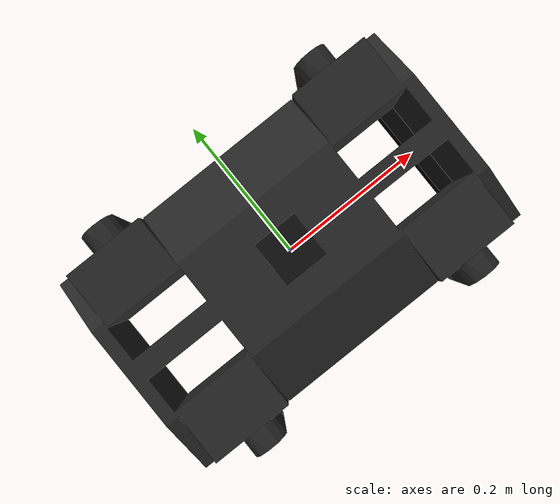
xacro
<?xml version="1.0"?>
<robot name="champ" xmlns:xacro="http://ros.org/wiki/xacro">
    <xacro:include filename="$(find champ_description)/urdf/properties.urdf.xacro" />

    <material name="black"><color rgba="0.15 0.15 0.15 1.0" /></material>

    <link name="base_link">

        <collision>
            <origin xyz="0 0 0" rpy="0 0 0" />
            <geometry>
                <mesh filename="${base_mesh_path}" scale="0.001 0.001 0.001" />
            </geometry>
        </collision>
        <visual>
            <origin xyz="0 0 0" rpy="0 0 0" />
            <geometry>
                <mesh filename="file://$(find champ_description)/meshes/base_simple.stl" scale="0.001 0.001 0.001" />
            </geometry>
            <material name="black" />
        </visual>
    </link>
    <link name="base_inertia">
        <inertial>
            <origin xyz="0 0 0" />
            <mass value="${base_mass}" />
            <inertia ixx="${(1/12) * base_mass * (base_y_length * base_y_length + base_z_length * base_z_length)}" ixy="0.0" ixz="0.0"
                     iyy="${(1/12) * base_mass * (base_x_length * base_x_length + base_z_length * base_z_length)}" iyz="0.0"
                     izz="${(1/12) * base_mass * (base_x_length * base_x_length + base_y_length * base_y_length)}" />
        </inertial>
    </link>
    <joint name="base_link_to_base_inertia" type="fixed">
        <parent link="base_link"/>
        <child link="base_inertia"/>
        <origin rpy="0 0 0" xyz="0 0 0"/>
    </joint>

    <gazebo reference="base_link">
        <material>Gazebo/FlatBlack</material>
    </gazebo>

    <xacro:include filename="$(find champ_description)/urdf/leg.urdf.xacro" />

    <xacro:include filename="$(find champ_description)/urdf/accessories.urdf.xacro" />

    <xacro:accessories
        base_name="base_link"
        base_length="${base_x_length}"
        base_height="${base_z_length}"
    />

    <xacro:champ_leg leg="lf"/>
    <xacro:champ_leg leg="lh"/>
    <xacro:champ_leg leg="rf"/>
    <xacro:champ_leg leg="rh"/>

    <gazebo>
      <plugin name="p3d_base_controller" filename="libgazebo_ros_p3d.so">
        <ros>
            <argument>odom:=odom/ground_truth</argument>
        </ros>

        <body_name>base_link</body_name>
        <frame_name>world</frame_name>
        <update_rate>10.0</update_rate>
        <xyz_offset>0 0 0</xyz_offset>
        <rpy_offset>0 0 0</rpy_offset>
        <gaussian_noise>0.01</gaussian_noise>
    </plugin>
    </gazebo>

    <gazebo>
        <plugin filename="libgazebo_ros2_control.so" name="gazebo_ros2_control">
        <parameters>$(find champ_gazebo)/config/ros_control.yaml</parameters>
      </plugin>
    </gazebo>
</robot>

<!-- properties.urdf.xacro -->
<robot xmlns:xacro="http://ros.org/wiki/xacro">
    <xacro:property name="base_to_hip_x" value="0.175" />
    <xacro:property name="base_to_hip_y" value="0.105" />
    <xacro:property name="hip_to_upper_leg_distance" value="0.06" />
    <xacro:property name="upper_leg_to_lower_leg_distance" value="0.141" />
    <xacro:property name="lower_leg_to_foot_distance" value="0.141" />

    <xacro:property name="hip_mesh_path" value="file://$(find champ_description)/meshes/hip.stl" />
    <xacro:property name="hip_mass" value="0.250" />
    <xacro:property name="hip_x_length" value="0.112" />
    <xacro:property name="hip_y_length" value="0.08" />
    <xacro:property name="hip_z_length" value="0.130" />

    <xacro:property name="upper_leg_mesh_path" value="file://$(find champ_description)/meshes/upper_leg_simple.stl" />
    <xacro:property name="upper_leg_mass" value="0.125" />
    <xacro:property name="upper_leg_x_length" value="0.05" />
    <xacro:property name="upper_leg_y_length" value="0.03" />
    <xacro:property name="upper_leg_z_length" value="0.1905" />

    <xacro:property name="lower_leg_mesh_path" value="file://$(find champ_description)/meshes/lower_leg_simple.stl" />
    <xacro:property name="lower_leg_mass" value="0.125" />
    <xacro:property name="lower_leg_x_length" value="0.039" />
    <xacro:property name="lower_leg_y_length" value="0.022" />
    <xacro:property name="lower_leg_z_length" value="0.156" />

    <xacro:property name="base_mesh_path" value="file://$(find champ_description)/meshes/base_simple.stl" />
    <xacro:property name="base_mass" value="2.0" />
    <xacro:property name="base_x_length" value="0.5" />
    <xacro:property name="base_y_length" value="0.29" />
    <xacro:property name="base_z_length" value="0.130" />
</robot>

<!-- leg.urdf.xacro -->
<robot xmlns:xacro="http://ros.org/wiki/xacro">
    <xacro:macro name="champ_leg" params="leg  " >

        <xacro:if value="${leg == 'lf'}">
            <xacro:property name="base_to_hip_xyz" value="${base_to_hip_x} ${base_to_hip_y} 0" />
            <xacro:property name="hip_to_upper_leg" value="${hip_to_upper_leg_distance}" />
        </xacro:if>

        <xacro:if value="${leg == 'lh'}">
            <xacro:property name="base_to_hip_xyz" value="-${base_to_hip_x} ${base_to_hip_y} 0" />
            <xacro:property name="hip_to_upper_leg" value="${hip_to_upper_leg_distance}" />
        </xacro:if>

        <xacro:if value="${leg == 'rf'}">
            <xacro:property name="base_to_hip_xyz" value="${base_to_hip_x} -${base_to_hip_y} 0" />
            <xacro:property name="hip_to_upper_leg" value="-${hip_to_upper_leg_distance}" />
        </xacro:if>

        <xacro:if value="${leg == 'rh'}">
            <xacro:property name="base_to_hip_xyz" value="-${base_to_hip_x} -${base_to_hip_y} 0" />
            <xacro:property name="hip_to_upper_leg" value="-${hip_to_upper_leg_distance}" />
        </xacro:if>

        <link name="${leg}_hip_debug_link"/>

        <link name="${leg}_hip_link">
            <inertial>
                <mass value="${hip_mass}" />
                <inertia ixx="${(1/12) * hip_mass * (hip_y_length * hip_y_length + hip_z_length * hip_z_length)}" ixy="0.0" ixz="0.0"
                         iyy="${(1/12) * hip_mass * (hip_x_length * hip_x_length + hip_z_length * hip_z_length)}" iyz="0.0"
                         izz="${(1/12) * hip_mass * (hip_x_length * hip_x_length + hip_y_length * hip_y_length)}" />
            </inertial>
            <collision>
                <origin xyz="0 0 0" rpy="0 0 0" />
                <geometry>
                    <mesh filename="${hip_mesh_path}" scale="0.001 0.001 0.001" />
                </geometry>
            </collision>
            <visual>
                <origin xyz="0 0 0" rpy="0 0 0" />
                <geometry>
                    <mesh filename="${hip_mesh_path}" scale="0.001 0.001 0.001" />
                </geometry>
                <material name="black" />
            </visual>
        </link>
        <gazebo reference="${leg}_hip_link">
            <material>Gazebo/FlatBlack</material>
        </gazebo>

        <link name="${leg}_upper_leg_link">
            <inertial>
                <origin xyz="0 0 -${(upper_leg_z_length / 2) - ((upper_leg_z_length - upper_leg_to_lower_leg_distance) / 2)}" />
                <mass value="${upper_leg_mass}" />
                <inertia ixx="${(1/12) * upper_leg_mass * (upper_leg_y_length * upper_leg_y_length + upper_leg_z_length * upper_leg_z_length)}" ixy="0.0" ixz="0.0"
                         iyy="${(1/12) * upper_leg_mass * (upper_leg_x_length * upper_leg_x_length + upper_leg_z_length * upper_leg_z_length)}" iyz="0.0"
                         izz="${(1/12) * upper_leg_mass * (upper_leg_x_length * upper_leg_x_length + upper_leg_y_length * upper_leg_y_length)}" />
            </inertial>
            <collision>
                <origin xyz="0 0 0" rpy="0 0 0" />
                <geometry>
                    <mesh filename="${upper_leg_mesh_path}" scale="0.001 0.001 0.001" />
                </geometry>
            </collision>
            <visual>
                <origin xyz="0 0 0" rpy="0 0 0" />
                <geometry>
                    <mesh filename="${upper_leg_mesh_path}" scale="0.001 0.001 0.001" />
                </geometry>
                <material name="black" />
            </visual>
        </link>
        <gazebo reference="${leg}_upper_leg_link">
            <material>Gazebo/FlatBlack</material>
        </gazebo>

        <link name="${leg}_lower_leg_link">
            <inertial>
                <origin xyz="0 0 -${(lower_leg_to_foot_distance - (lower_leg_z_length - lower_leg_to_foot_distance)) / 2}" />
                <mass value="${lower_leg_mass}" />
                <inertia ixx="${(1/12) * lower_leg_mass * (lower_leg_y_length * lower_leg_y_length + lower_leg_z_length * lower_leg_z_length)}" ixy="0.0" ixz="0.0"
                         iyy="${(1/12) * lower_leg_mass * (lower_leg_x_length * lower_leg_x_length + lower_leg_z_length * lower_leg_z_length)}" iyz="0.0"
                         izz="${(1/12) * lower_leg_mass * (lower_leg_x_length * lower_leg_x_length + lower_leg_y_length * lower_leg_y_length)}" />
            </inertial>
            <collision>
                <origin xyz="0 0 0" rpy="0 0 0" />
                <geometry>
                    <mesh filename="${lower_leg_mesh_path}" scale="0.001 0.001 0.001" />
                </geometry>
            </collision>
            <visual>
                <origin xyz="0 0 0" rpy="0 0 0" />
                <geometry>
                    <mesh filename="${lower_leg_mesh_path}" scale="0.001 0.001 0.001" />
                </geometry>
                <material name="black" />
            </visual>
        </link>

        <gazebo reference="${leg}_lower_leg_link">
            <kp>10000000000.0</kp>
            <kd>100.0</kd>
            <mu1>0.8</mu1>
            <mu2>0.8</mu2>
            <minDepth>0.05</minDepth>
            <material>Gazebo/FlatBlack</material>
        </gazebo>

        <link name="${leg}_foot_link" />

        <joint name="${leg}_debug_joint" type="fixed">
            <parent link="base_link" />
            <child link="${leg}_hip_debug_link" />
            <origin xyz="${base_to_hip_xyz}" rpy="0 0 0" />
        </joint>

        <joint name="${leg}_hip_joint" type="revolute">
            <axis xyz="1 0 0" />
            <limit effort="25" lower="-${pi}" upper="${pi}" velocity="1.5" />
            <parent link="base_link" />
            <child link="${leg}_hip_link" />
            <origin xyz="${base_to_hip_xyz}" rpy="0 0 0" />
        </joint>

        <joint name="${leg}_upper_leg_joint" type="revolute">
            <axis xyz="0 1 0" />
            <limit effort="25" lower="-${pi}" upper="${pi}" velocity="1.5" />
            <parent link="${leg}_hip_link" />
            <child link="${leg}_upper_leg_link" />
            <origin xyz="0 ${hip_to_upper_leg} 0" rpy="0 0 0" />
        </joint>

        <joint name="${leg}_lower_leg_joint" type="revolute">
            <axis xyz="0 1 0" />
            <limit effort="25" lower="-${pi}" upper="${pi}" velocity="1.5" />
            <parent link="${leg}_upper_leg_link" />
            <child link="${leg}_lower_leg_link" />
            <origin xyz="0 0 -${upper_leg_to_lower_leg_distance}" rpy="0 0 0" />
        </joint>

        <joint name="${leg}_foot_joint" type="fixed">
            <parent link="${leg}_lower_leg_link" />
            <child link="${leg}_foot_link" />
            <origin xyz="0.00325 0 -${lower_leg_to_foot_distance}" rpy="0 0 0" />
        </joint>

        <ros2_control name="${leg}" type="system">
            <hardware>
                <plugin>gazebo_ros2_control/GazeboSystem</plugin>
            </hardware>
            <joint name="${leg}_hip_joint">
                <command_interface name="effort"/>
                <state_interface name="position"/>
                <state_interface name="velocity"/>
            </joint>

            <joint name="${leg}_upper_leg_joint">
                <command_interface name="effort"/>
                <state_interface name="position"/>
                <state_interface name="velocity"/>
            </joint>

            <joint name="${leg}_lower_leg_joint">
                <command_interface name="effort"/>
                <state_interface name="position"/>
                <state_interface name="velocity"/>
            </joint>
        </ros2_control>
    </xacro:macro>
</robot>

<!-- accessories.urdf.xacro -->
<robot xmlns:xacro="http://ros.org/wiki/xacro">
    <xacro:macro name="accessories" params="base_name base_length base_height  " >

        <xacro:include filename="$(find champ_description)/urdf/hokuyo_utm30lx.urdf.xacro" />
        <xacro:include filename="$(find champ_description)/urdf/asus_camera.urdf.xacro" />

        <xacro:hokuyo_utm30lx
            name="hokuyo"
            parent="${base_name}"
            ros_topic="scan"
            update_rate="30"
            ray_count="1040"
            min_angle="130"
            max_angle="-130" >
            <origin xyz="0.0 0.0 ${base_height / 2 + 0.04}" rpy="0 0 0"/>
        </xacro:hokuyo_utm30lx>

        <xacro:asus_camera
            parent="${base_name}"
            name="camera">
            <origin xyz="${base_length / 2} 0.0 -${base_height / 2 + 0.01}" rpy="0 0 0"/>
        </xacro:asus_camera>

        <link name="imu_link">
            <inertial>
                <mass value="0.001"/>
                <origin xyz="0 0 0" rpy="0 0 0"/>
                <inertia ixx="1e-09" ixy="0.0" ixz="0.0" iyy="1e-09" iyz="0.0" izz="1e-09"/>
            </inertial>

        </link>
        <joint name="imu_joint" type="fixed">
            <parent link="${base_name}" />
            <child link="imu_link" />
        </joint>

        <gazebo reference="imu_link">
                <sensor name="imu_controller" type="imu">
                    <always_on>true</always_on>
                    <update_rate>50</update_rate>
                    <plugin name="gazebo_ros_imu_sensor" filename="libgazebo_ros_imu_sensor.so">
                        <ros>
                            <namespace>/imu</namespace>
                            <argument>~/out:=data</argument>
                        </ros>
                    </plugin>
                </sensor>
            </gazebo>
    </xacro:macro>
</robot>

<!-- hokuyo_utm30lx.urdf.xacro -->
<robot xmlns:xacro="http://www.ros.org/wiki/xacro">
    <xacro:property name="M_PI" value="3.1415926535897931" />

    <xacro:macro name="hokuyo_utm30lx_model" params="name parent *origin">
      <joint name="${name}_joint" type="fixed">
        <xacro:insert_block name="origin" />
        <parent link="${parent}"/>
        <child link="${name}_frame"/>
      </joint>

      <link name="${name}_frame">
        <inertial>
          <mass value="0.270" />
          <origin xyz="0 0 0" rpy="0 0 0" />
          <inertia ixx="2.632e-4" ixy="0" ixz="0" iyy="2.632e-4" iyz="0" izz="1.62e-4" />
        </inertial>
        <visual>
          <origin xyz="0 0 0" rpy="0 0 0" />
          <geometry>
          <mesh filename="file://$(find champ_description)/meshes/hokuyo_utm_30lx$(optenv TEST_SELF_FILTER).dae"/>
        </geometry>
        </visual>
        <collision>
          <origin xyz="0 0 -0.0115" rpy="0 0 0" />
          <geometry>
          <box size="0.058 0.058 0.087" />
        </geometry>
        </collision>
      </link>
    </xacro:macro>

    <xacro:macro name="hokuyo_utm30lx" params="name parent *origin ros_topic update_rate ray_count min_angle max_angle">
      <xacro:hokuyo_utm30lx_model name="${name}" parent="${parent}">
        <xacro:insert_block name="origin" />
      </xacro:hokuyo_utm30lx_model>

      <gazebo reference="${name}_frame">
        <sensor type="ray" name="${name}">
          <always_on>true</always_on>
          <update_rate>${update_rate}</update_rate>
          <pose>0 0 0 0 0 0</pose>
          <visualize>false</visualize>
          <ray>
            <scan>
              <horizontal>
                <samples>${ray_count}</samples>
                <resolution>1</resolution>
                <min_angle>${min_angle * M_PI/180}</min_angle>
                <max_angle>${max_angle * M_PI/180}</max_angle>
              </horizontal>
            </scan>
            <range>
              <min>0.2</min>
              <max>30.0</max>
              <resolution>0.01</resolution>
            </range>
            <noise>
              <type>gaussian</type>
              <mean>0.0</mean>
              <stddev>0.004</stddev>
            </noise>
          </ray>
          <plugin name="gazebo_ros_${name}_controller" filename="libgazebo_ros_ray_sensor.so">
            <ros>
              <argument>~/out:=${ros_topic}</argument>
            </ros>
            <!-- Set output to sensor_msgs/PointCloud to get same output type as gazebo_ros_block_laser -->
            <output_type>sensor_msgs/LaserScan</output_type>

            <!-- min_intensity instead of hokuyoMinIntensity -->
            <min_intensity>100.0</min_intensity>
          </plugin>
        </sensor>
      </gazebo>
    </xacro:macro>

    <xacro:macro name="hokuyo_utm30lx_gpu" params="name parent *origin ros_topic update_rate ray_count min_angle max_angle">
      <xacro:hokuyo_utm30lx_model name="${name}" parent="${parent}">
        <xacro:insert_block name="origin" />
      </xacro:hokuyo_utm30lx_model>

      <gazebo reference="${name}_frame">
        <sensor type="gpu_ray" name="${name}">
          <update_rate>${update_rate}</update_rate>
          <pose>0 0 0 0 0 0</pose>
          <visualize>false</visualize>
          <ray>
            <scan>
              <horizontal>
                <samples>${ray_count}</samples>
                <resolution>1</resolution>
                <min_angle>${min_angle * M_PI/180}</min_angle>
                <max_angle>${max_angle * M_PI/180}</max_angle>
              </horizontal>
            </scan>
            <range>
              <min>0.2</min>
              <max>30.0</max>
              <resolution>0.01</resolution>
            </range>
            <noise>
              <type>gaussian</type>
              <mean>0.0</mean>
              <stddev>0.004</stddev>
            </noise>
          </ray>
          <plugin name="gazebo_ros_${name}_controller" filename="libgazebo_ros_ray_sensor.so">
            <ros>
              <argument>~/out:=${ros_topic}</argument>
            </ros>
            <output_type>sensor_msgs/LaserScan</output_type>
            <min_intensity>100.0</min_intensity>
          </plugin>
        </sensor>
      </gazebo>
    </xacro:macro>
</robot>

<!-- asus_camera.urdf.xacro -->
<robot xmlns:xacro="http://www.ros.org/wiki/xacro">
    <xacro:property name="M_PI" value="3.1415926535897931" />

    <!--
     The asus_camera_model macro only adds the model, it does not also add
     the openni gazebo plugin. See the 'asus_camera' macro below for that
    -->
    <xacro:macro name="asus_camera_model" params="name parent *origin">
      <joint name="${name}_joint" type="fixed">
        <xacro:insert_block name="origin" />
        <parent link="${parent}"/>
        <child link="${name}_link"/>
      </joint>

      <link name="${name}_link">
        <inertial>
          <mass value="0.200" />
          <origin xyz="0 0 0" rpy="0 0 0" />
          <inertia ixx="5.8083e-4" ixy="0" ixz="0" iyy="3.0833e-5" iyz="0" izz="5.9083e-4" />
        </inertial>
        <visual>
          <origin xyz="0 0 0" rpy="0 0 0" />
          <geometry>
            <mesh filename="file://$(find champ_description)/meshes/asus_camera_simple.dae"/>
          </geometry>
        </visual>
        <collision>
          <origin xyz="0 0 0" rpy="0 0 0" />
          <geometry>
            <mesh filename="file://$(find champ_description)/meshes/asus_camera_simple.dae"/>
          </geometry>
        </collision>

      </link>

      <joint name="${name}_depth_joint" type="fixed">
        <origin xyz="0.0 0.049 0.0" rpy="0 0 0" />
        <parent link="${name}_link" />
        <child link="${name}_depth_frame"/>
      </joint>

      <link name="${name}_depth_frame"/>

      <joint name="${name}_depth_optical_joint" type="fixed">
        <origin xyz="0 0 0" rpy="${-M_PI/2} 0.0 ${-M_PI/2}" />
        <parent link="${name}_depth_frame" />
        <child link="${name}_depth_optical_frame"/>
      </joint>

      <link name="${name}_depth_optical_frame"/>

      <joint name="${name}_rgb_joint" type="fixed">
        <origin xyz="0.0 0.022 0.0" rpy="0 0 0" />
        <parent link="${name}_link" />
        <child link="${name}_rgb_frame"/>
      </joint>

      <link name="${name}_rgb_frame"/>

      <joint name="${name}_rgb_optical_joint" type="fixed">
        <origin xyz="0 0 0" rpy="${-M_PI/2} 0.0 ${-M_PI/2}" />
        <parent link="${name}_rgb_frame" />
        <child link="${name}_rgb_optical_frame"/>
      </joint>

      <link name="${name}_rgb_optical_frame"/>
    </xacro:macro>

    <!--
     The asus_camera macro only adds the model, and also adds
     the openni gazebo plugin.
    -->
    <xacro:macro name="asus_camera" params="name parent *origin">
      <xacro:asus_camera_model name="${name}" parent="${parent}">
        <xacro:insert_block name="origin" />
      </xacro:asus_camera_model>

      <!-- ASUS Xtion PRO camera for simulation -->
      <gazebo reference="${name}_depth_frame">
        <sensor type="depth" name="${name}">
          <update_rate>20</update_rate>
          <camera name="${name}_depth_frame_camera">
            <horizontal_fov>${62.8 * M_PI/180.0}</horizontal_fov>
            <image>
              <format>R8G8B8</format>
              <width>640</width>
              <height>480</height>
            </image>
            <clip>
              <near>0.5</near>
              <far>9</far>
            </clip>
          </camera>

          <!-- Set always_on only sensor, not on plugin -->
          <always_on>1</always_on>

          <!-- Set update_rate only sensor, not on plugin -->
          <update_rate>30</update_rate>

          <plugin name="${name}_camera_controller" filename="libgazebo_ros_camera.so">
            <ros>
              <argument>custom_camera/image_raw:=${name}/rgb/image_raw</argument>
              <argument>custom_camera/image_depth:=${name}/depth/image_raw</argument>
              <argument>custom_camera/camera_info:=custom_camera/custom_info_raw</argument>
              <argument>custom_camera/camera_info_depth:=${name}/depth/camera_info</argument>
              <argument>custom_camera/points:=${name}/depth/points</argument>

            </ros>
            <qos>
              <topic name="/${name}/image_raw">
                  <publisher>
                      <reliability>reliable</reliability>
                      <durability>volatile</durability>
                      <history>keep_all</history>
                      <deadline>123</deadline> <!-- milliseconds -->
                      <lifespan>42</lifespan> <!-- milliseconds -->
                      <liveliness>manual_by_topic</liveliness>
                      <liveliness_lease_duration>1000</liveliness_lease_duration> <!-- milliseconds -->
                  </publisher>
                  <subscription>

                      <reliability>reliable</reliability>
                      <durability>volatile</durability>
                      <history depth="3">keep_last</history>
                  </subscription>
              </topic>

              <topic name="/${name}/depth/image_raw">
                  <publisher>
                      <reliability>reliable</reliability>
                      <durability>volatile</durability>
                      <history>keep_all</history>

                  </publisher>
                  <subscription>

                      <reliability>reliable</reliability>
                      <durability>volatile</durability>
                      <history depth="3">keep_last</history>
                  </subscription>
              </topic>

              <topic name="/${name}/depth/camera_info">
                  <publisher>
                      <reliability>reliable</reliability>
                      <durability>volatile</durability>
                      <history>keep_all</history>
                      <deadline>123</deadline> <!-- milliseconds -->
                      <lifespan>42</lifespan> <!-- milliseconds -->
                      <liveliness>manual_by_topic</liveliness>
                      <liveliness_lease_duration>1000</liveliness_lease_duration> <!-- milliseconds -->
                  </publisher>
                  <subscription>

                      <reliability>reliable</reliability>
                      <durability>volatile</durability>
                      <history depth="3">keep_last</history>
                  </subscription>
              </topic>

              <topic name="/${name}/camera_info">
                  <publisher>
                      <reliability>reliable</reliability>
                      <durability>volatile</durability>
                      <history>keep_all</history>
                      <deadline>123</deadline> <!-- milliseconds -->
                      <lifespan>42</lifespan> <!-- milliseconds -->
                      <liveliness>manual_by_topic</liveliness>
                      <liveliness_lease_duration>1000</liveliness_lease_duration> <!-- milliseconds -->
                  </publisher>
                  <subscription>

                      <reliability>reliable</reliability>
                      <durability>volatile</durability>
                      <history depth="3">keep_last</history>
                  </subscription>
              </topic>

            </qos>
            <!-- Set camera name. If empty, defaults to sensor name (i.e. "sensor_name") -->

            <!-- Set TF frame name. If empty, defaults to link name (i.e. "link_name") -->
            <frame_name>${name}_depth_optical_frame</frame_name>

            <hack_baseline>0.07</hack_baseline>

            <!-- No need to repeat distortion parameters or to set autoDistortion -->

            <min_depth>0.001</min_depth>
            <max_depth>20.0</max_depth>
          </plugin>
        </sensor>
      </gazebo>
    </xacro:macro>
  </robot>
